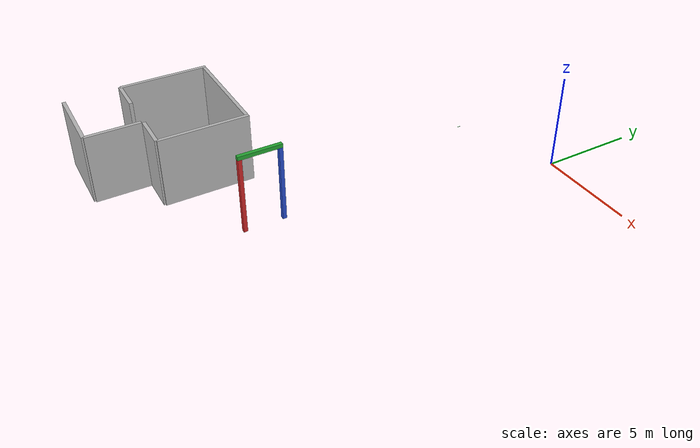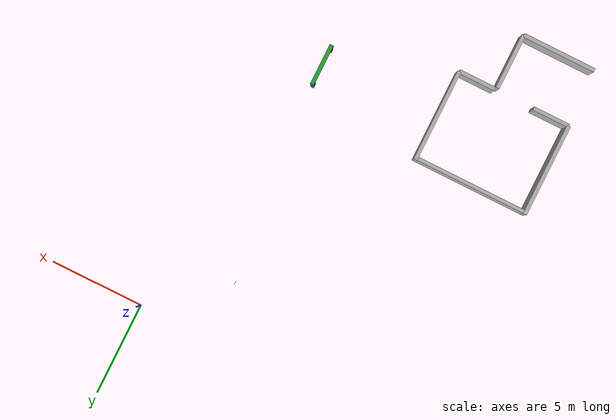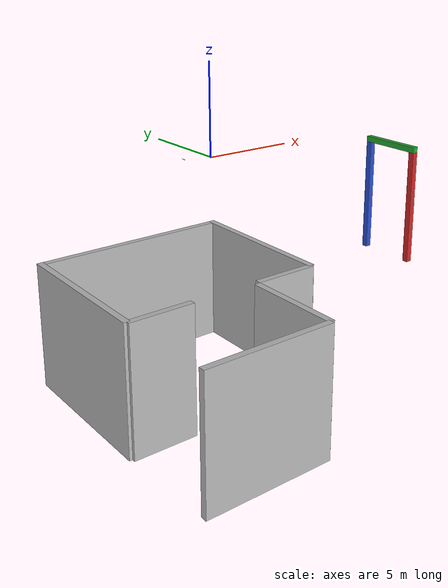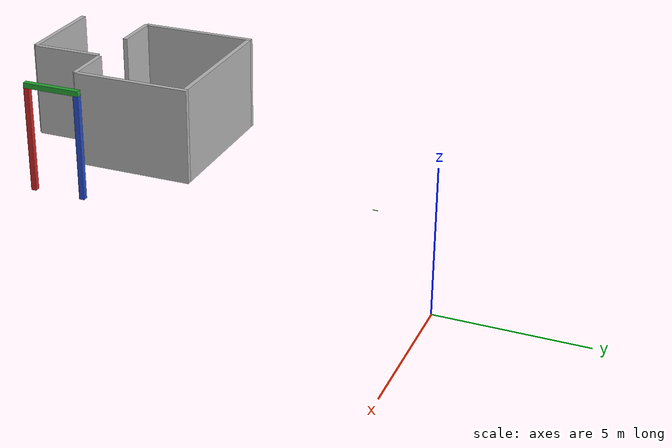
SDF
<sdf version="1.3">
 <world name="default">
  <light type="directional" name="sun">
   <pose>0 0 100 0 0 0</pose>
   <diffuse>0.9 0.9 0.9 1</diffuse>
   <specular>0.1 0.1 0.1 1</specular>
   <attenuation>
    <range>1000</range>
    <constant>0.9</constant>
    <linear>0.01</linear>
    <quadratic>0.001</quadratic>
   </attenuation>
   <direction>0.2 0.0 -1.0</direction>
  </light>
  <light type="point" name="light_bulb">
   <cast_shadows>false</cast_shadows>
   <pose>-14 0 5 0 0 0</pose>
   <diffuse>0.5 0.5 0.5 1</diffuse>
   <specular>0.0 0.0 0.0 1</specular>
   <attenuation>
    <range>80</range>
    <constant>0.9</constant>
    <linear>0.01</linear>
    <quadratic>0.001</quadratic>
   </attenuation>
  </light>
  <light type="point" name="light_bulb_2">
   <cast_shadows>false</cast_shadows>
   <pose>-2 -4 5 0 0 0</pose>
   <diffuse>0.5 0.5 0.5 1</diffuse>
   <specular>0.0 0.0 0.0 1</specular>
   <attenuation>
    <range>80</range>
    <constant>0.9</constant>
    <linear>0.01</linear>
    <quadratic>0.001</quadratic>
   </attenuation>
  </light>
  <include><uri>model://starting_pen</uri><pose>-12.31 -15 0 0 0 -1.5707</pose></include>
  <include><uri>model://gate</uri><name>start_gate</name><pose>-2.86 -15 2.0 0 0 0</pose></include>
  <model name="valve_attachment">
   <static>true</static>
   <pose>-3.82 -3.22 1.2 1.5707 0 0</pose>
   <link name="link">
    <collision name="collision_1">
     <geometry><cylinder><radius>0.01</radius><length>0.2</length></cylinder></geometry>
    </collision>
    <visual name="visual_1">
     <geometry><cylinder><radius>0.01</radius><length>0.2</length></cylinder></geometry>
     <material><script><uri>file://media/materials/scripts</uri><name>Gazebo/Green</name></script></material>
    </visual>
   </link>
  </model>
 </world>
</sdf>

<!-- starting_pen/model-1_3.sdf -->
<sdf version="1.3">
  <model name="starting_pen">
    <static>true</static>
    <pose>-2.0 0 2.0 0 0 0</pose>

    <link name="link">
      <collision name="back_collision">
        <pose>-2 0 0 0 0 0</pose>
        <geometry>
          <box>
            <size>0.2 6 4.0</size>
          </box>
        </geometry>
      </collision>
      <visual name="back_visual">
        <pose>-2 0 0 0 0 0</pose>
        <geometry>
          <box>
            <size>0.2 6 4.0</size>
          </box>
        </geometry>
        <material>
          <script>
            <uri>file://media/materials/scripts/drc_qual.material</uri>
            <name>DRCQual/WarningWall</name>
          </script>
        </material>
      </visual>

      <collision name="left_collision">
        <pose>0.4 -3.1 0 0 0 0</pose>
        <geometry>
          <box>
            <size>5 0.2 4.0</size>
          </box>
        </geometry>
      </collision>
      <visual name="left_visual_lower">
        <pose>0.4 -3.1 0.0 0 0 0</pose>
        <geometry>
          <box>
            <size>5 0.2 4.0</size>
          </box>
        </geometry>
        <material>
          <script>
            <uri>file://media/materials/scripts/drc_qual.material</uri>
            <name>DRCQual/WarningWall</name>
          </script>
        </material>
      </visual>

      <collision name="right_collision">
        <pose>0.4 3.1 0 0 0 0</pose>
        <geometry>
          <box>
            <size>5 0.2 4.0</size>
          </box>
        </geometry>
      </collision>
      <visual name="right_visual">
        <pose>0.4 3.1 0 0 0 0</pose>
        <geometry>
          <box>
            <size>5 0.2 4.0</size>
          </box>
        </geometry>
        <material>
          <script>
            <uri>file://media/materials/scripts/drc_qual.material</uri>
            <name>DRCQual/WarningWall</name>
          </script>
        </material>
      </visual>

      <collision name="front_right_collision">
        <pose>2.9 2.1 0 0 0 0</pose>
        <geometry>
          <box>
            <size>0.2 2.0 4.0</size>
          </box>
        </geometry>
      </collision>
      <visual name="front_right_visual">
        <pose>2.9 2.1 0 0 0 0</pose>
        <geometry>
          <box>
            <size>0.2 2.0 4.0</size>
          </box>
        </geometry>
        <material>
          <script>
            <uri>file://media/materials/scripts/drc_qual.material</uri>
            <name>DRCQual/WarningWall</name>
          </script>
        </material>
      </visual>

      <collision name="front_left_collision">
        <pose>2.9 -2.1 0 0 0 0</pose>
        <geometry>
          <box>
            <size>0.2 2.0 4.0</size>
          </box>
        </geometry>
      </collision>
      <visual name="front_left_visual">
        <pose>2.9 -2.1 0 0 0 0</pose>
        <geometry>
          <box>
            <size>0.2 2.0 4.0</size>
          </box>
        </geometry>
        <material>
          <script>
            <uri>file://media/materials/scripts/drc_qual.material</uri>
            <name>DRCQual/WarningWall</name>
          </script>
        </material>
      </visual>

      <collision name="front_collision">
        <pose>6.0 -1 0 0 0 0</pose>
        <geometry>
          <box>
            <size>0.2 4 4.0</size>
          </box>
        </geometry>
      </collision>
      <visual name="front_visual">
        <pose>6.0 -1 0 0 0 3.1415</pose>
        <geometry>
          <mesh>
            <uri>model://arrow_wall/meshes/arrow_wall.dae</uri>
          </mesh>
        </geometry>
      </visual>

      <collision name="entryway_collision">
        <pose>4.5 1.0 0 0 0 0</pose>
        <geometry>
          <box>
            <size>3.0 .2 4.0</size>
          </box>
        </geometry>
      </collision>
      <visual name="entryway_visual">
        <pose>4.5 1.0 0 0 0 0</pose>
        <geometry>
          <box>
            <size>3.0 .2 4.0</size>
          </box>
        </geometry>
        <material>
          <script>
            <uri>file://media/materials/scripts/drc_qual.material</uri>
            <name>DRCQual/WarningWall</name>
          </script>
        </material>
      </visual>

    </link>
  </model>
</sdf>

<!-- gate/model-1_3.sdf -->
<sdf version="1.3">

  <model name="gate">
    <static>true</static>
    <pose>0 0 2.0 0 0 0</pose>
    <link name="link">
      <collision name="right_collision">
        <pose>0 -1.0 0 0 0 0</pose>
        <geometry>
          <box>
            <size>0.2 0.2 4.0</size>
          </box>
        </geometry>
      </collision>
      <visual name="right_visual">
        <pose>0 -1.0 0 0 0 0</pose>
        <geometry>
          <box>
            <size>0.2 0.2 4.0</size>
          </box>
        </geometry>
        <material>
          <script>
            <uri>model://gate/materials/scripts/gate.material</uri>
            <uri>model://gate/materials/textures</uri>
            <name>vrc/red_gate</name>
          </script>
        </material>
      </visual>

      <collision name="left_collision">
        <pose>0 1.0 0 0 0 0</pose>
        <geometry>
          <box>
            <size>0.2 0.2 4.0</size>
          </box>
        </geometry>
      </collision>
      <visual name="left_visual">
        <pose>0 1.0 0 0 0 0</pose>
        <geometry>
          <box>
            <size>0.2 0.2 4.0</size>
          </box>
        </geometry>
        <material>
          <script>
            <uri>model://gate/materials/scripts/gate.material</uri>
            <uri>model://gate/materials/textures</uri>
            <name>vrc/blue_gate</name>
          </script>
        </material>
      </visual>

      <collision name="top_collision">
        <pose>0 0 2.1 0 0 0</pose>
        <geometry>
          <box>
            <size>0.2 2.2 0.2</size>
          </box>
        </geometry>
      </collision>
      <visual name="top_visual">
        <pose>0 0 2.1 0 0 0</pose>
        <geometry>
          <box>
            <size>0.2 2.2 0.2</size>
          </box>
        </geometry>
        <material>
          <script>
            <uri>model://gate/materials/scripts/gate.material</uri>
            <uri>model://gate/materials/textures</uri>
            <name>vrc/green_gate</name>
          </script>
        </material>
      </visual>
    </link>
  </model>
</sdf>
